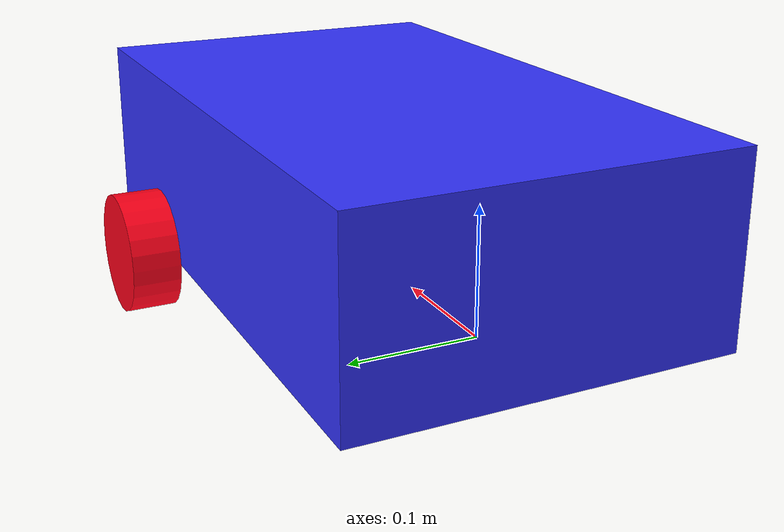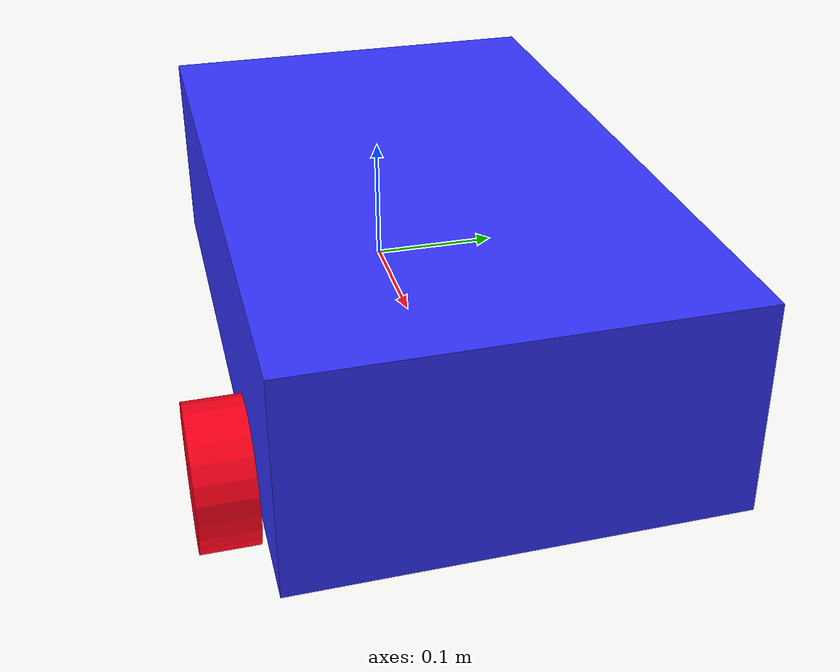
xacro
<?xml version="1.0"?>
<robot xmlns:xacro="http://www.ros.org/wiki/xacro" name="tow_tractor_v1">

    <xacro:arg name="use_gazebo" default="false" />

    <xacro:include filename="tow_tractor_v1_core.xacro" />

    <!-- Gazebo Plugins -->
    <xacro:if value="$(arg use_gazebo)">
        <xacro:include filename="gazebo_control.xacro" />
        <xacro:include filename="gazebo_lidar.xacro" />
        <xacro:include filename="gazebo_imu.xacro" />
    </xacro:if>
</robot>

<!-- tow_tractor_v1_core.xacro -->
<robot xmlns:xacro="http://www.ros.org/wiki/xacro">

    <!-- INCLUDES -->
    <xacro:include filename="material.xacro"/>
    <xacro:include filename="inertial_macros.xacro"/>

    <!-- CHASSIS PROPERTIES -->
    <xacro:property name="chassis_width" value="0.3" />
    <xacro:property name="chassis_length" value="0.5" />
    <xacro:property name="chassis_hight" value="0.15" />
    <xacro:property name="chassis_shift" value="0.1" />
    <xacro:property name="chassis_mass" value="0.5" />

    <!-- WHEEL PROPERTIES -->
    <xacro:property name="wheel_rad" value="0.05" />
    <xacro:property name="wheel_width" value="0.04"/>
    <xacro:property name="wheel_material" value="orange"/>
    <xacro:property name="wheel_mass" value="0.1"/>

    <!-- STEERING LIMITS PROPERTIES -->
    <xacro:property name="steering_max_angle" value="0.52"/>        <!--rad-->
    <xacro:property name="steering_max_speed" value="1.0"/>         <!--rad/s-->
    <xacro:property name="steering_max_torque" value="10.0"/>

    <!-- BASE LINK -->
    <link name="base_link">
    </link>

    <!-- BASE FOOTPRINT LINK -->
    <link name ="base_footprint">
    </link>

    <joint name="base_footprint_joint" type="fixed">
        <parent link="base_link"/>
        <child link="base_footprint"/>
        <origin xyz="0 0.0 0.0" rpy="0.0 0.0 0.0"/>
    </joint>

    <!-- CHASSIS LINK -->
    <link name="chassis_link">
        <visual>
            <geometry>
                <box size="${chassis_length} ${chassis_width} ${chassis_hight}"/>
            </geometry>
            <material name="blue"/>
            <origin xyz="${chassis_length/2} 0.0 ${chassis_hight/2}" rpy="0.0 0.0 0.0"/>
        </visual>
        <collision>
            <geometry>
                <box size="${chassis_length} ${chassis_width} ${chassis_hight}"/>
            </geometry>
            <origin xyz="${chassis_length/2} 0.0 ${chassis_hight/2}" rpy="0.0 0.0 0.0"/>
        </collision>
        <xacro:inertial_box mass="${chassis_mass}" x="${chassis_length}" y="${chassis_width}" z="${chassis_hight}">
            <origin xyz="${chassis_length/2} 0.0 ${chassis_hight/2}" rpy="0.0 0.0 0.0"/>
        </xacro:inertial_box>
    </link>

    <joint name="chassis_joint" type="fixed">
        <parent link="base_link"/>
        <child link="chassis_link"/>
        <origin xyz="${-chassis_shift} 0.0 0.0" rpy="0.0 0.0 0.0"/>
    </joint>

    <!-- LEFT WHEEL LINK -->
    <link name="left_wheel_link">
        <visual>
            <geometry>
                <cylinder radius="${wheel_rad}" length="${wheel_width}"/>
            </geometry>
            <origin xyz="0.0 ${wheel_width / 2} 0" rpy="${pi/2} 0.0 0.0"/>
            <material name="${wheel_material}"/>
        </visual>
        <collision>
            <geometry>
                <cylinder radius="${wheel_rad}" length="${wheel_width}"/>
            </geometry>
            <origin xyz="0.0 ${wheel_width / 2} 0" rpy="${pi/2} 0.0 0.0"/>
        </collision>
        <xacro:inertial_cylinder mass="${wheel_mass}" radius="${wheel_rad}" length="${wheel_width}">
            <origin xyz="0.0 ${wheel_width / 2} 0" rpy="${pi/2} 0.0 0.0"/>
        </xacro:inertial_cylinder>
    </link>

    <joint name="left_wheel_joint" type="continuous">
        <parent link="chassis_link"/>
        <child link="left_wheel_link"/>
        <origin xyz="${chassis_length * 3 / 4} ${chassis_width / 2} 0.0" rpy="0 0.0 0.0"/>
        <axis xyz="0.0 1.0 0.0"/>
    </joint>

    <!-- RIGHT WHEEL LINK -->
    <link name="right_wheel_link">
        <visual>
            <geometry>
                <cylinder radius="${wheel_rad}" length="${wheel_width}"/>
            </geometry>
            <origin xyz="0.0 ${-wheel_width / 2} 0" rpy="${pi/2} 0.0 0.0"/>
            <material name="${wheel_material}"/>
        </visual>
        <collision>
            <geometry>
                <cylinder radius="${wheel_rad}" length="${wheel_width}"/>
            </geometry>
            <origin xyz="0.0 ${-wheel_width / 2} 0" rpy="${pi/2} 0.0 0.0"/>
        </collision>
        <xacro:inertial_cylinder mass="${wheel_mass}" radius="${wheel_rad}" length="${wheel_width}">
            <origin xyz="0.0 ${-wheel_width / 2} 0" rpy="${pi/2} 0.0 0.0"/>
        </xacro:inertial_cylinder>
    </link>

    <joint name="right_wheel_joint" type="continuous">
        <parent link="chassis_link"/>
        <child link="right_wheel_link"/>
        <origin xyz="${chassis_length * 3 / 4} ${-chassis_width / 2} 0.0" rpy="0 0.0 0.0"/>
        <axis xyz="0.0 1.0 0.0"/>
    </joint>

    <!-- REAR WHEEL LINK -->
    <link name="rear_wheel_mount_link">
        <!-- Other elements like visual and collision -->
        <inertial>
            <mass value="0.001"/> <!-- Adjust mass as needed -->
            <inertia ixx="0.001" ixy="0.0" ixz="0.0" iyy="0.001" iyz="0.0" izz="0.001"/> <!-- Adjust inertia values as needed -->
        </inertial>
    </link>

    <link name="rear_wheel_link">
        <visual>
            <geometry>
                <cylinder radius="${wheel_rad}" length="${wheel_width}"/>
            </geometry>
            <origin xyz="0.0 0.0 0" rpy="${pi/2} 0.0 0.0"/>
            <material name="${wheel_material}"/>
        </visual>
        <collision>
            <geometry>
                <cylinder radius="${wheel_rad}" length="${wheel_width}"/>
            </geometry>
            <origin xyz="0.0 0.0 0" rpy="${pi/2} 0.0 0.0"/>
        </collision>
        <xacro:inertial_cylinder mass="${wheel_mass}" radius="${wheel_rad}" length="${wheel_width}">
            <origin xyz="0.0 0.0 0" rpy="${pi/2} 0.0 0.0"/>
        </xacro:inertial_cylinder>
    </link>

    <joint name="rear_wheel_joint" type="continuous">
        <parent link="rear_wheel_mount_link"/>
        <child link="rear_wheel_link"/>
        <origin xyz="0.0 0.0 0.0" rpy="0.0 0.0 0.0"/>
        <axis xyz="0.0 1.0 0.0"/>
    </joint>

    <joint name="steering_joint" type="revolute">
        <parent link="base_link"/>
        <child link="rear_wheel_mount_link"/>
        <origin xyz="0.0 0.0 0.0" rpy="0.0 0.0 0.0"/>
        <axis xyz="0.0 0.0 1.0"/>
        <limit lower="${-steering_max_angle}" upper="${steering_max_angle}" effort="${steering_max_torque}" velocity="${steering_max_speed}"/>
    </joint>

    <!-- Gazebo Friction Parameters -->
</robot>

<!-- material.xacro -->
<robot xmlns:xacro="http://www.ros.org/wiki/xacro">

    <material name="white">
        <color rgba="1 1 1 1"/>
    </material>

    <material name="orange">
        <color rgba="1 0. 0.1 1"/>
    </material>

    <material name="blue">
        <color rgba="0.2 0.2 1 1"/>
    </material>

    <material name="black">
        <color rgba="0 0 0 1"/>
    </material>
</robot>

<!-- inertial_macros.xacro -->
<robot xmlns:xacro="http://www.ros.org/wiki/xacro" >

    <!-- Specify some standard inertial calculations https://en.wikipedia.org/wiki/List_of_moments_of_inertia -->
    <!-- These make use of xacro's mathematical functionality -->

    <xacro:macro name="inertial_sphere" params="mass radius *origin">
        <inertial>
            <xacro:insert_block name="origin"/>
            <mass value="${mass}" />
            <inertia ixx="${(2.0/5.0) * mass * (radius*radius)}" ixy="0.0" ixz="0.0"
                    iyy="${(2.0/5.0) * mass * (radius*radius)}" iyz="0.0"
                    izz="${(2.0/5.0) * mass * (radius*radius)}" />
        </inertial>
    </xacro:macro>

    <xacro:macro name="inertial_box" params="mass x y z *origin">
        <inertial>
            <xacro:insert_block name="origin"/>
            <mass value="${mass}" />
            <inertia ixx="${(1.0/12.0) * mass * (y*y+z*z)}" ixy="0.0" ixz="0.0"
                    iyy="${(1.0/12.0) * mass * (x*x+z*z)}" iyz="0.0"
                    izz="${(1.0/12.0) * mass * (x*x+y*y)}" />
        </inertial>
    </xacro:macro>

<xacro:macro name="inertial_cylinder" params="mass length radius *origin">
    <inertial>
        <xacro:insert_block name="origin"/>
        <mass value="${mass}" />
        <inertia ixx="${(1.0/12.0) * mass * (3.0 * radius * radius + length * length)}"
                ixy="0.0" ixz="0.0"
                iyy="${(1.0/12.0) * (mass) * (3.0 * (radius) * (radius) + (length) * (length))}"
                iyz="0.0"
                izz="${(1.0/2.0) * (mass) * (radius) * (radius)}" />
    </inertial>
</xacro:macro>

</robot>
